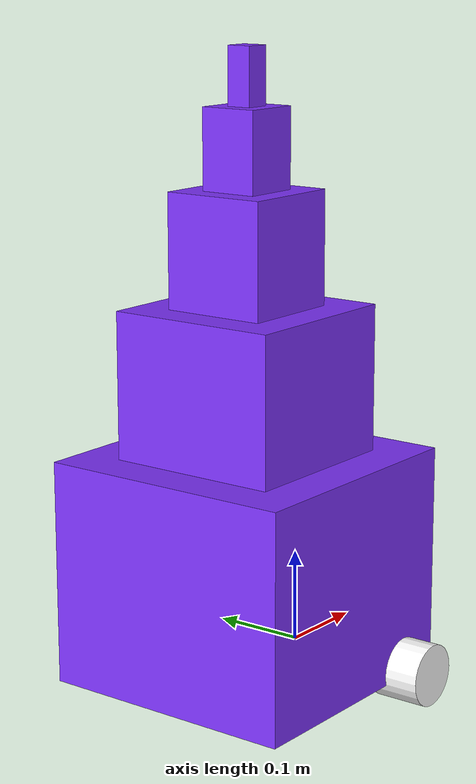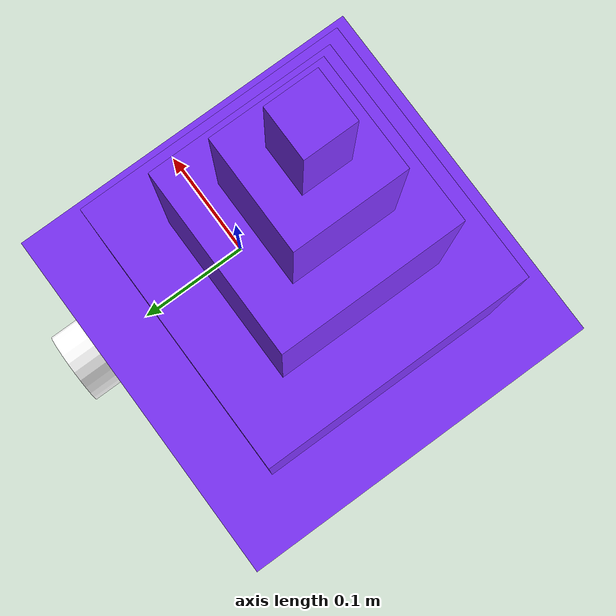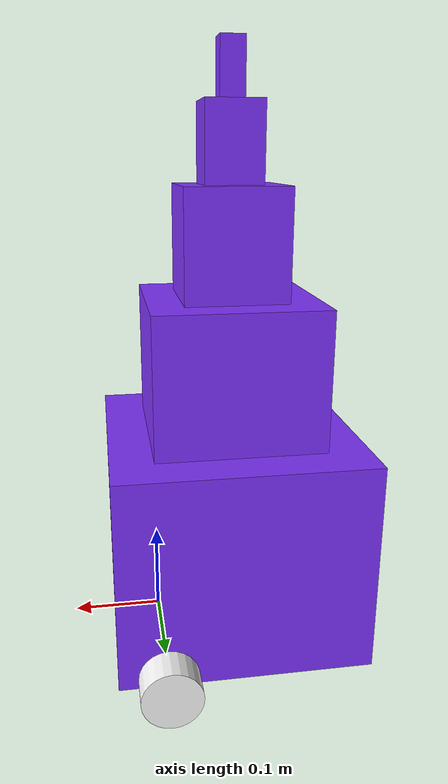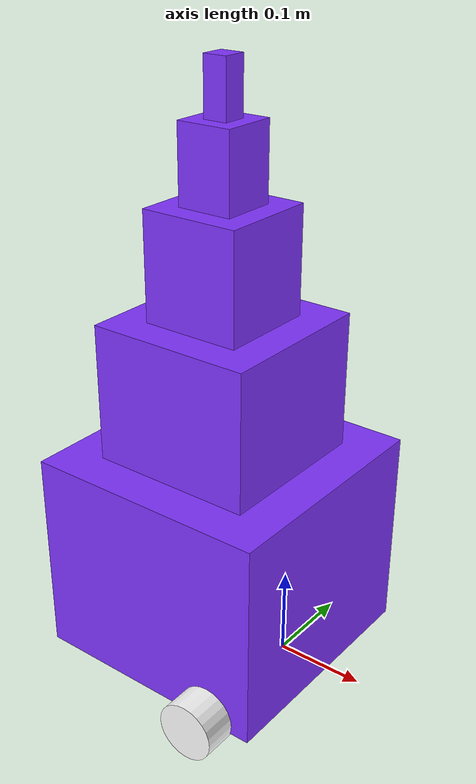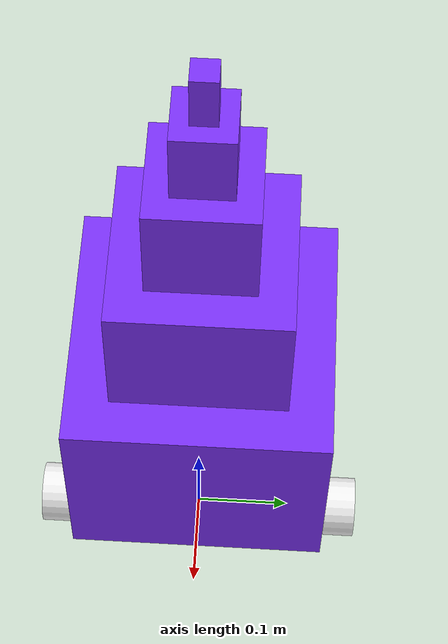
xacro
<?xml version="1.0" ?>
<robot name='robot' xmlns:xacro="http://ros.org/wiki/xacro">
    <xacro:include filename="$(find robot_description)/urdf/gazebo.urdf.xacro" />
    -->

    <xacro:property name="chassis_length" value="0.28"/>
    <xacro:property name="chassis_width" value="0.28"/>
    <xacro:property name="chassis_height" value="0.238"/>
    <xacro:property name="wheel_radius" value="0.033"/>
    <xacro:property name="wheel_thickness" value="0.056"/>
    <xacro:property name="wheel_mass" value="0.05"/>
    <xacro:property name="wheel_offset_x" value="0.226"/>
    <xacro:property name="wheel_offset_y" value="0.1485"/>
    <xacro:property name="wheel_offset_z" value="0.01"/>
    <xacro:property name="caster_wheel_radius" value="0.01"/>
    <xacro:property name="caster_wheel_mass" value="0.01"/>
    <xacro:property name="caster_wheel_offset_x" value="0.075"/>
    <xacro:property name="caster_wheel_offset_z" value="${wheel_offset_z - wheel_radius + caster_wheel_radius}"/>
    <xacro:property name="mass" value="1.0"/>

    <material name="white">
        <color rgba="1 1 1 1" />
    </material>

    <material name="orange">
        <color rgba="1 0.3 0.1 1"/>
    </material>

    <material name="blue">
        <color rgba="0.5 0.2 1 1"/>
    </material>

    <material name="black">
        <color rgba="0 0 0 1"/>
    </material>

    <material name="red">
        <color rgba="1 0 0 1"/>
    </material>

    <link name="base_link">
    </link>

    <link name="base_footprint">
    </link>

    <joint name="base_footprint_joint" type="fixed">
        <parent link="base_link"/>
        <child link="base_footprint"/>
        <origin xyz="0 0 -0.138" rpy="0 0 0"/>
    </joint>

    <joint name="chassis_joint" type="fixed">
        <parent link="base_link"/>
        <child link="chassis"/>
        <origin xyz="${-wheel_offset_x} 0 ${-wheel_offset_z}"/>
    </joint>

    <link name='chassis'>

    <inertial>
        <origin xyz="${chassis_length/2} 0 ${chassis_height/2}" rpy="0 0 0"/>
        <mass value="${mass}" />
        <inertia ixx="${(1/12) * mass * (chassis_width*chassis_width+chassis_height*chassis_height)}" ixy="0.0" ixz="0.0"
                 iyy="${(1/12) * mass * (chassis_length*chassis_length+chassis_height*chassis_height)}" iyz="0.0"
                 izz="${(1/12) * mass * (chassis_length*chassis_length+chassis_width*chassis_width)}" />
    </inertial>
    <visual>
        <origin xyz="${chassis_length/2} 0 ${chassis_height/2}"/>
        <geometry>
            <box size="${chassis_length} ${chassis_width} ${chassis_height}"/>
        </geometry>
        <material name="blue"/>
    </visual>
    <collision>
        <origin xyz="${chassis_length/2} 0 ${chassis_height/2}"/>
        <geometry>
            <box size="${chassis_length} ${chassis_width} ${chassis_height}"/>
        </geometry>
    </collision>
    </link>

    <joint name="chassis_joint1" type="fixed">
        <parent link="base_link"/>
        <child link="chassis1"/>
        <origin xyz="${-wheel_offset_x} 0 ${-wheel_offset_z}"/>
    </joint>

    <link name='chassis1'>

    <inertial>
        <origin xyz="${chassis_length/2} 0 ${chassis_height/2}" rpy="0 0 0"/>
        <mass value="${mass}" />
        <inertia ixx="${(1/12) * mass * (chassis_width*chassis_width+chassis_height*chassis_height)}" ixy="0.0" ixz="0.0"
                 iyy="${(1/12) * mass * (chassis_length*chassis_length+chassis_height*chassis_height)}" iyz="0.0"
                 izz="${(1/12) * mass * (chassis_length*chassis_length+chassis_width*chassis_width)}" />
    </inertial>
    <visual>
        <origin xyz="${chassis_length/2} 0 ${chassis_height}"/>
        <geometry>
            <box size="${chassis_length*2/3} ${chassis_width*2/3} ${chassis_height*1.3}"/>
        </geometry>
        <material name="blue"/>
    </visual>
    <collision>
        <origin xyz="${chassis_length/2} 0 ${chassis_height}"/>
        <geometry>
            <box size="${chassis_length*2/3} ${chassis_width*2/3} ${chassis_height*1.3}"/>
        </geometry>
    </collision>

    </link>

    <joint name="chassis_joint2" type="fixed">
        <parent link="base_link"/>
        <child link="chassis2"/>
        <origin xyz="${-wheel_offset_x} 0 ${-wheel_offset_z}"/>
    </joint>

    <link name='chassis2'>

    <inertial>
        <origin xyz="${chassis_length/2} 0 ${chassis_height/2}" rpy="0 0 0"/>
        <mass value="${mass}" />
        <inertia ixx="${(1/12) * mass * (chassis_width*chassis_width+chassis_height*chassis_height)}" ixy="0.0" ixz="0.0"
                 iyy="${(1/12) * mass * (chassis_length*chassis_length+chassis_height*chassis_height)}" iyz="0.0"
                 izz="${(1/12) * mass * (chassis_length*chassis_length+chassis_width*chassis_width)}" />
    </inertial>
    <visual>
        <origin xyz="${chassis_length/2} 0 ${chassis_height*1.35}"/>
        <geometry>
            <box size="${chassis_length*2/5} ${chassis_width*2/5} ${chassis_height*1.6}"/>
        </geometry>
        <material name="blue"/>
    </visual>
    <collision>
        <origin xyz="${chassis_length/2} 0 ${chassis_height}"/>
        <geometry>
            <box size="${chassis_length*2/5} ${chassis_width*2/5} ${chassis_height*1.6}"/>
        </geometry>
    </collision>
    </link>

    <joint name="chassis_joint3" type="fixed">
        <parent link="base_link"/>
        <child link="chassis3"/>
        <origin xyz="${-wheel_offset_x} 0 ${-wheel_offset_z}"/>
    </joint>

    <link name='chassis3'>

    <inertial>
        <origin xyz="${chassis_length/2} 0 ${chassis_height/2}" rpy="0 0 0"/>
        <mass value="${mass}" />
        <inertia ixx="${(1/12) * mass * (chassis_width*chassis_width+chassis_height*chassis_height)}" ixy="0.0" ixz="0.0"
                 iyy="${(1/12) * mass * (chassis_length*chassis_length+chassis_height*chassis_height)}" iyz="0.0"
                 izz="${(1/12) * mass * (chassis_length*chassis_length+chassis_width*chassis_width)}" />
    </inertial>
    <visual>
        <origin xyz="${chassis_length/2} 0 ${chassis_height*1.5}"/>
        <geometry>
            <box size="${chassis_length*2/9} ${chassis_width*2/9} ${chassis_height*2}"/>
        </geometry>
        <material name="blue"/>
    </visual>
    <collision>
        <origin xyz="${chassis_length/2} 0 ${chassis_height}"/>
        <geometry>
            <box size="${chassis_length*2/7} ${chassis_width*2/7} ${chassis_height*1.6}"/>
        </geometry>
    </collision>
    </link>

    <joint name="chassis_joint4" type="fixed">
        <parent link="base_link"/>
        <child link="chassis4"/>
        <origin xyz="${-wheel_offset_x} 0 ${-wheel_offset_z}"/>
    </joint>

    <link name='chassis4'>

    <inertial>
        <origin xyz="${chassis_length/2} 0 ${chassis_height/2}" rpy="0 0 0"/>
        <mass value="${mass}" />
        <inertia ixx="${(1/12) * mass * (chassis_width*chassis_width+chassis_height*chassis_height)}" ixy="0.0" ixz="0.0"
                 iyy="${(1/12) * mass * (chassis_length*chassis_length+chassis_height*chassis_height)}" iyz="0.0"
                 izz="${(1/12) * mass * (chassis_length*chassis_length+chassis_width*chassis_width)}" />
    </inertial>
    <visual>
        <origin xyz="${chassis_length/2} 0 ${chassis_height*1.5}"/>
        <geometry>
            <box size="${chassis_length*2/21} ${chassis_width*2/21} ${chassis_height*2.5}"/>
        </geometry>
        <material name="blue"/>
    </visual>
    <collision>
        <origin xyz="${chassis_length/2} 0 ${chassis_height}"/>
        <geometry>
            <box size="${chassis_length*2/21} ${chassis_width*2/21} ${chassis_height*1.6}"/>
        </geometry>
    </collision>
    </link>

    <joint name="left_wheel_joint" type="continuous">
        <parent link="base_link"/>
        <child link="left_wheel"/>
        <origin xyz="0 ${wheel_offset_y} 0" rpy="-${pi/2} 0 0" />
        <axis xyz="0 0 1"/>
    </joint>

    <link name="left_wheel">
        <visual>
            <geometry>
                <cylinder radius="${wheel_radius}" length="${wheel_thickness}"/>
            </geometry>
            <material name="white"/>
        </visual>
        <collision>
            <geometry>
                <sphere radius="${wheel_radius}"/>
            </geometry>
        </collision>
        <inertial>
            <origin xyz="0 0 0" rpy="0 0 0"/>
            <mass value="${wheel_mass}" />
            <inertia ixx="${(1/12) * wheel_mass * (3*wheel_radius*wheel_radius + wheel_thickness*wheel_thickness)}" ixy="0.0" ixz="0.0"
                     iyy="${(1/12) * wheel_mass * (3*wheel_radius*wheel_radius + wheel_thickness*wheel_thickness)}" iyz="0.0"
                     izz="${(1/2) * wheel_mass * (wheel_radius*wheel_radius)}" />
        </inertial>
    </link>

    <gazebo reference="left_wheel">
        <material>Gazebo/White</material>
    </gazebo>

    <joint name="right_wheel_joint" type="continuous">
        <parent link="base_link"/>
        <child link="right_wheel"/>
        <origin xyz="0 ${-wheel_offset_y} 0" rpy="${pi/2} 0 0" />
        <axis xyz="0 0 -1"/>
    </joint>

    <link name="right_wheel">
        <visual>
            <geometry>
                <cylinder radius="${wheel_radius}" length="${wheel_thickness}"/>
            </geometry>
            <material name="white"/>
        </visual>
        <collision>
            <geometry>
                <sphere radius="${wheel_radius}"/>
            </geometry>
        </collision>
        <inertial>
            <origin xyz="0 0 0" rpy="0 0 0"/>
            <mass value="${wheel_mass}" />
            <inertia ixx="${(1/12) * wheel_mass * (3*wheel_radius*wheel_radius + wheel_thickness*wheel_thickness)}" ixy="0.0" ixz="0.0"
                     iyy="${(1/12) * wheel_mass * (3*wheel_radius*wheel_radius + wheel_thickness*wheel_thickness)}" iyz="0.0"
                     izz="${(1/2) * wheel_mass * (wheel_radius*wheel_radius)}" />
        </inertial>
    </link>

    <gazebo reference="right_wheel">
        <material>Gazebo/White</material>
    </gazebo>

    <joint name="caster_wheel_joint" type="fixed">
        <parent link="chassis"/>
        <child link="caster_wheel"/>
        <origin xyz="${caster_wheel_offset_x} 0 ${caster_wheel_offset_z}"/>
    </joint>

    <link name="caster_wheel">
        <visual>
            <geometry>
                <sphere radius="${caster_wheel_radius}"/>
            </geometry>
            <material name="white"/>
        </visual>
        <collision>
            <geometry>
                <sphere radius="${caster_wheel_radius}"/>
            </geometry>
        </collision>
        <inertial>
            <origin xyz="0 0 0" rpy="0 0 0"/>
            <mass value="${caster_wheel_mass}" />
            <inertia ixx="${(2/5) * caster_wheel_mass * (caster_wheel_radius*caster_wheel_radius)}" ixy="0.0" ixz="0.0"
                     iyy="${(2/5) * caster_wheel_mass * (caster_wheel_radius*caster_wheel_radius)}" iyz="0.0"
                     izz="${(2/5) * caster_wheel_mass * (caster_wheel_radius*caster_wheel_radius)}" />
        </inertial>
    </link>

    <gazebo reference="caster_wheel">
        <material>Gazebo/White</material>
        <mu1 value="0.001"/>
        <mu2 value="0.001"/>
    </gazebo>

</robot>
